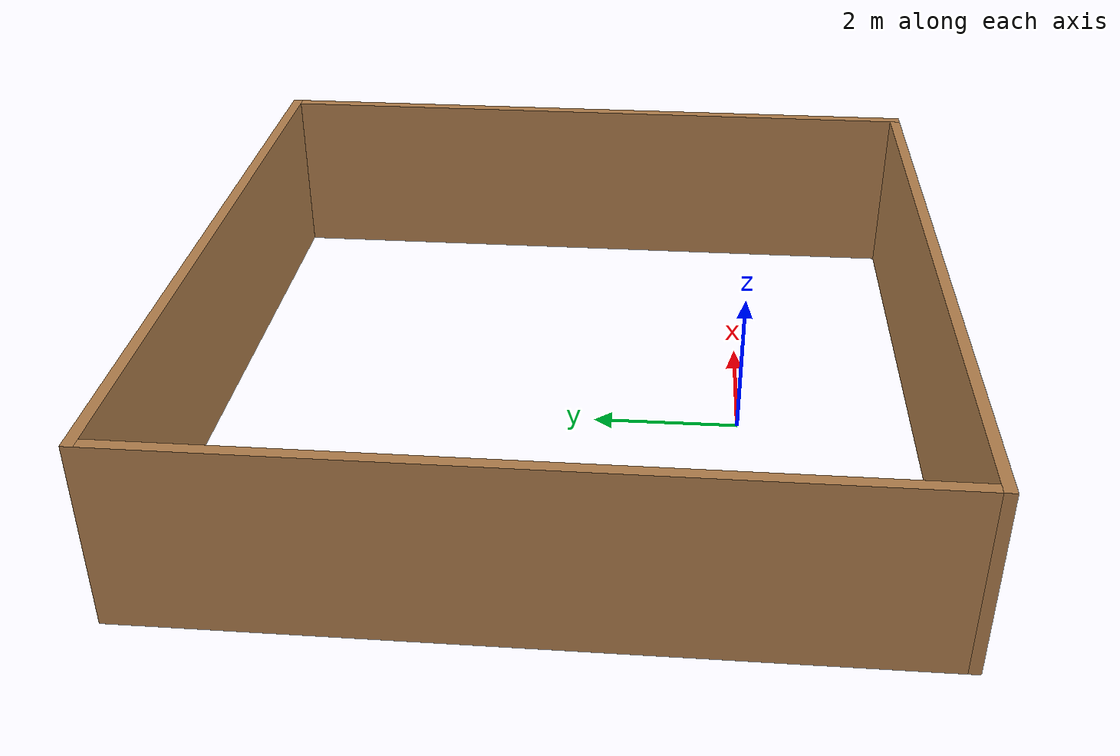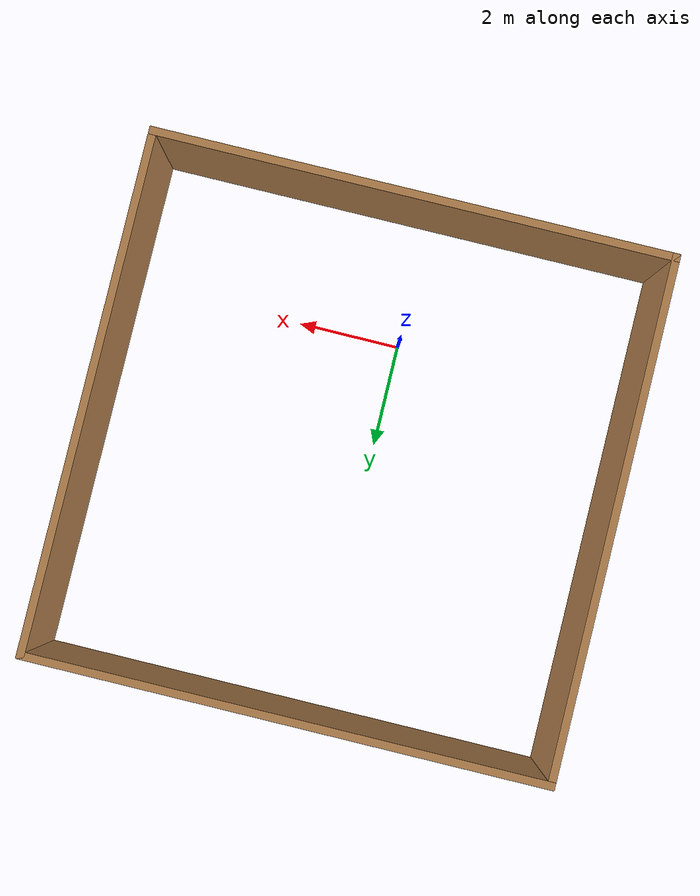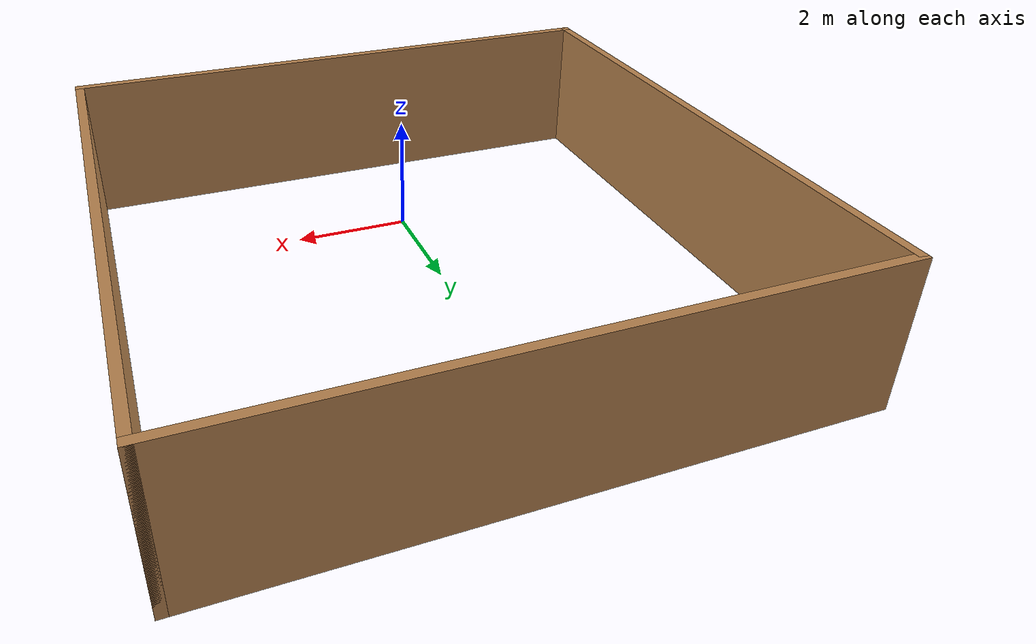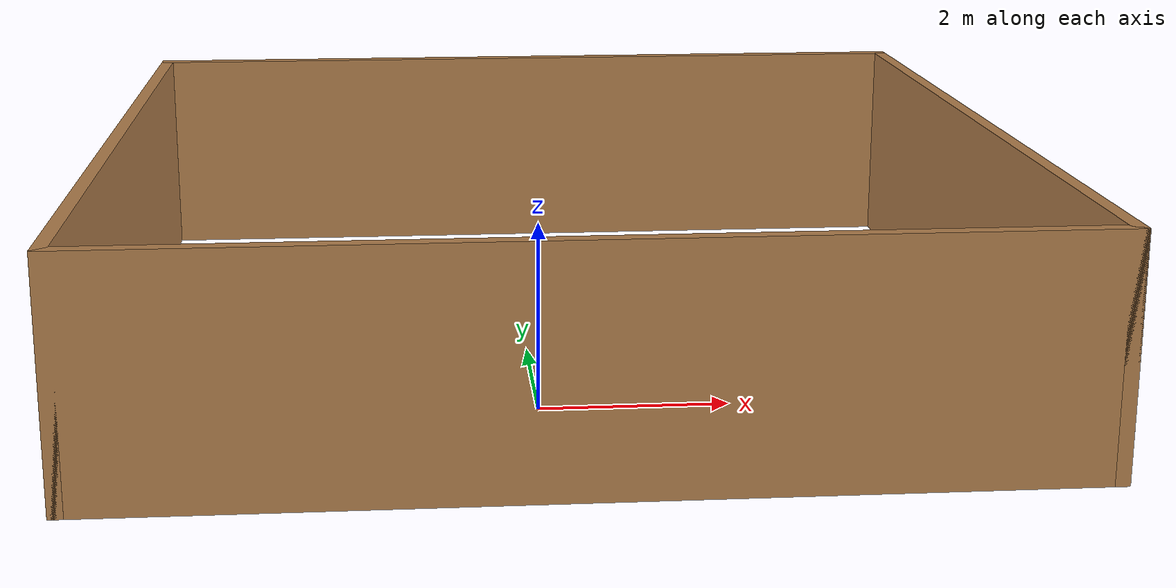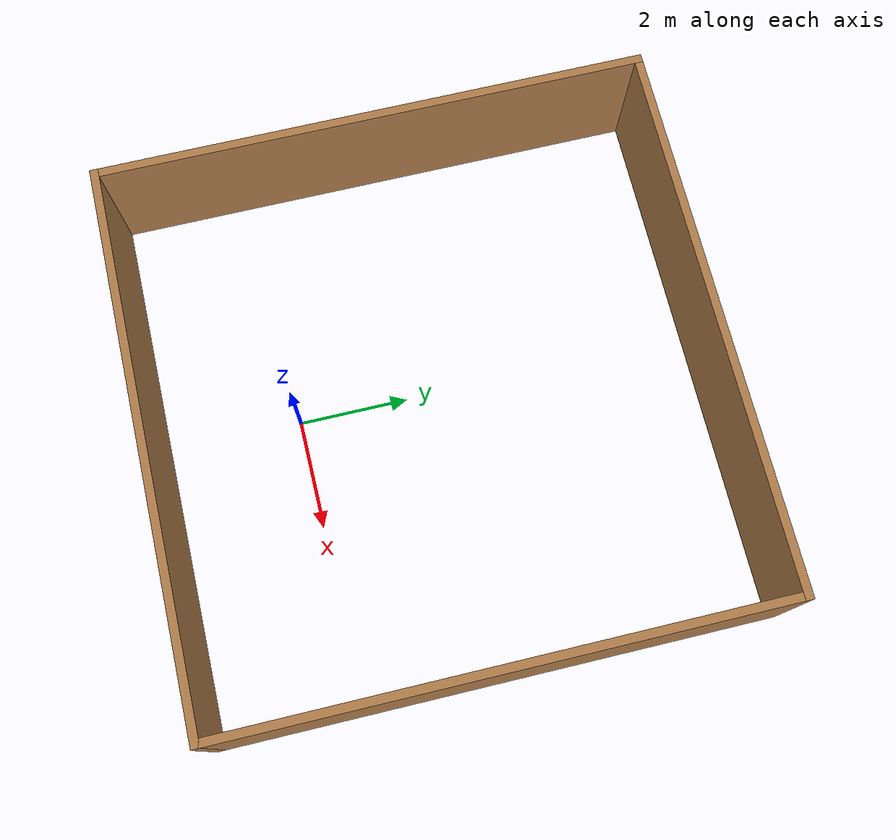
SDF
<?xml version='1.0'?>
<sdf version='1.7'>
  <model name='turtlebot3_room'>
    <pose>0.385739 2.41834 0 0 -0 0</pose>
    <link name='Wall_5'>
      <collision name='Wall_5_Collision'>
        <geometry>
          <box>
            <size>10 0.15 2.5</size>
          </box>
        </geometry>
        <pose>0 0 1.25 0 -0 0</pose>
      </collision>
      <visual name='Wall_5_Visual'>
        <pose>0 0 1.25 0 -0 0</pose>
        <geometry>
          <box>
            <size>10 0.15 2.5</size>
          </box>
        </geometry>
        <material>
          <script>
            <uri>file://media/materials/scripts/gazebo.material</uri>
            <name>Gazebo/Wood</name>
          </script>
          <ambient>1 1 1 1</ambient>
        </material>
        <meta>
          <layer>0</layer>
        </meta>
      </visual>
      <pose>-0 -4.925 0 0 -0 0</pose>
    </link>
    <link name='Wall_7'>
      <collision name='Wall_7_Collision'>
        <geometry>
          <box>
            <size>10 0.15 2.5</size>
          </box>
        </geometry>
        <pose>0 0 1.25 0 -0 0</pose>
      </collision>
      <visual name='Wall_7_Visual'>
        <pose>0 0 1.25 0 -0 0</pose>
        <geometry>
          <box>
            <size>10 0.15 2.5</size>
          </box>
        </geometry>
        <material>
          <script>
            <uri>file://media/materials/scripts/gazebo.material</uri>
            <name>Gazebo/Wood</name>
          </script>
          <ambient>1 1 1 1</ambient>
        </material>
        <meta>
          <layer>0</layer>
        </meta>
      </visual>
      <pose>-4.925 0 0 0 -0 1.5708</pose>
    </link>
    <link name='Wall_8'>
      <collision name='Wall_8_Collision'>
        <geometry>
          <box>
            <size>10 0.15 2.5</size>
          </box>
        </geometry>
        <pose>0 0 1.25 0 -0 0</pose>
      </collision>
      <visual name='Wall_8_Visual'>
        <pose>0 0 1.25 0 -0 0</pose>
        <geometry>
          <box>
            <size>10 0.15 2.5</size>
          </box>
        </geometry>
        <material>
          <script>
            <uri>file://media/materials/scripts/gazebo.material</uri>
            <name>Gazebo/Wood</name>
          </script>
          <ambient>1 1 1 1</ambient>
        </material>
        <meta>
          <layer>0</layer>
        </meta>
      </visual>
      <pose>-0 4.925 0 0 -0 0</pose>
    </link>
    <link name='Wall_9'>
      <collision name='Wall_9_Collision'>
        <geometry>
          <box>
            <size>10 0.15 2.5</size>
          </box>
        </geometry>
        <pose>0 0 1.25 0 -0 0</pose>
      </collision>
      <visual name='Wall_9_Visual'>
        <pose>0 0 1.25 0 -0 0</pose>
        <geometry>
          <box>
            <size>10 0.15 2.5</size>
          </box>
        </geometry>
        <material>
          <script>
            <uri>file://media/materials/scripts/gazebo.material</uri>
            <name>Gazebo/Wood</name>
          </script>
          <ambient>1 1 1 1</ambient>
        </material>
        <meta>
          <layer>0</layer>
        </meta>
      </visual>
      <pose>4.925 0 0 0 -0 -1.5708</pose>
    </link>
    <static>1</static>
  </model>
</sdf>
